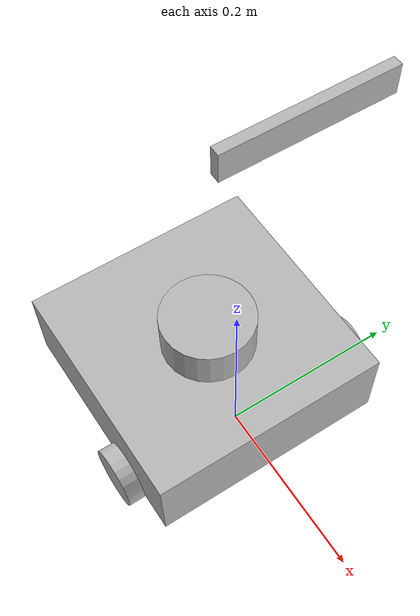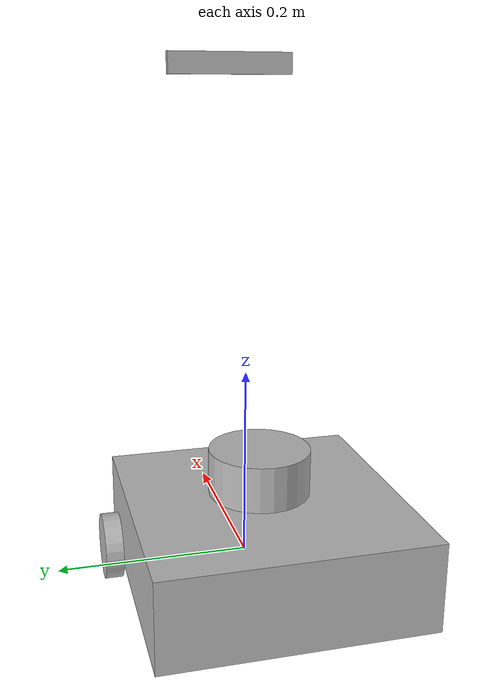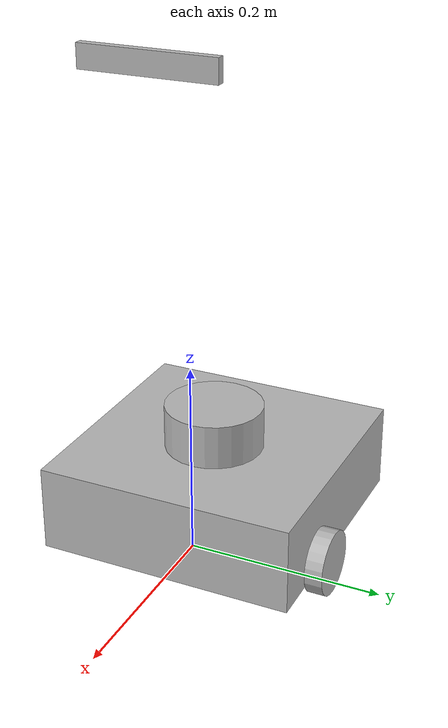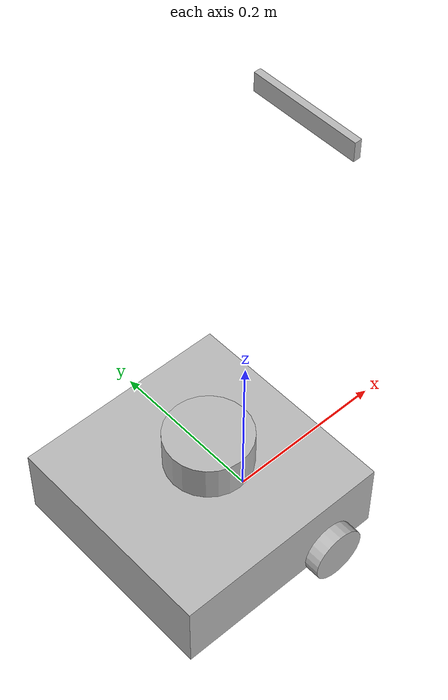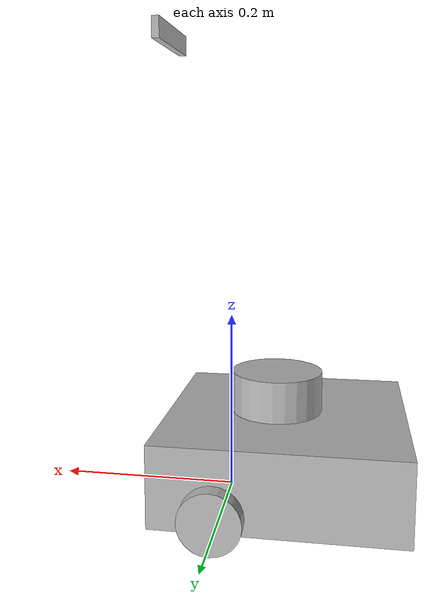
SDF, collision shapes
<?xml version="1.0"?>
<sdf version="1.6">
  <model name="turtlebot3_waffle_d435">
    <pose>0.0 0.0 0.0 0.0 0.0 0.0</pose>

    <link name="base_footprint" />

    <link name="base_link">

      <inertial>
        <pose>-0.064 0 0.048 0 0 0</pose>
        <inertia>
          <ixx>4.2111447e-02</ixx>
          <ixy>0</ixy>
          <ixz>0</ixz>
          <iyy>4.2111447e-02</iyy>
          <iyz>0</iyz>
          <izz>7.5254874e-02</izz>
        </inertia>
        <mass>1.3729096e+00</mass>
      </inertial>

      <collision name="base_collision">
        <pose>-0.064 0 0.048 0 0 0</pose>
        <geometry>
          <box>
            <size>0.265 0.265 0.089</size>
          </box>
        </geometry>
      </collision>

      <visual name="base_visual">
        <pose>-0.064 0 0 0 0 0</pose>
        <geometry>
          <mesh>
            <uri>/home/james/ros2_ws/src/my_nav2_bringup/my_bringup/models/turtlebot3_waffle_d435/meshes/waffle_base.dae</uri>
            <scale>0.001 0.001 0.001</scale>
          </mesh>
        </geometry>
      </visual>
    </link>

    <link name="imu_link">
      <sensor name="tb3_imu" type="imu">
        <always_on>true</always_on>
        <update_rate>200</update_rate>
        <imu>
          <angular_velocity>
            <x>
              <noise type="gaussian">
                <mean>0.0</mean>
                <stddev>2e-4</stddev>
              </noise>
            </x>
            <y>
              <noise type="gaussian">
                <mean>0.0</mean>
                <stddev>2e-4</stddev>
              </noise>
            </y>
            <z>
              <noise type="gaussian">
                <mean>0.0</mean>
                <stddev>2e-4</stddev>
              </noise>
            </z>
          </angular_velocity>
          <linear_acceleration>
            <x>
              <noise type="gaussian">
                <mean>0.0</mean>
                <stddev>1.7e-2</stddev>
              </noise>
            </x>
            <y>
              <noise type="gaussian">
                <mean>0.0</mean>
                <stddev>1.7e-2</stddev>
              </noise>
            </y>
            <z>
              <noise type="gaussian">
                <mean>0.0</mean>
                <stddev>1.7e-2</stddev>
              </noise>
            </z>
          </linear_acceleration>
        </imu>
        <plugin name="turtlebot3_imu" filename="libgazebo_ros_imu_sensor.so">
          <ros>
            <remapping>~/out:=imu</remapping>
          </ros>
        </plugin>
      </sensor>
    </link>

    <link name="base_scan">
      <inertial>
        <pose>-0.052 0 0.111 0 0 0</pose>
        <inertia>
          <ixx>0.001</ixx>
          <ixy>0.000</ixy>
          <ixz>0.000</ixz>
          <iyy>0.001</iyy>
          <iyz>0.000</iyz>
          <izz>0.001</izz>
        </inertia>
        <mass>0.125</mass>
      </inertial>

      <collision name="lidar_sensor_collision">
        <pose>-0.052 0 0.111 0 0 0</pose>
        <geometry>
          <cylinder>
            <radius>0.0508</radius>
            <length>0.055</length>
          </cylinder>
        </geometry>
      </collision>

      <visual name="lidar_sensor_visual">
        <pose>-0.064 0 0.121 0 0 0</pose>
        <geometry>
          <mesh>
            <uri>/home/james/ros2_ws/src/my_nav2_bringup/my_bringup/models/turtlebot3_waffle_d435/meshes/lds.dae</uri>
            <scale>0.001 0.001 0.001</scale>
          </mesh>
        </geometry>
      </visual>

      <sensor name="hls_lfcd_lds" type="ray">
        <always_on>true</always_on>
        <visualize>true</visualize>
        <pose>-0.064 0 0.121 0 0 0</pose>
        <update_rate>5</update_rate>
        <ray>
          <scan>
            <horizontal>
              <samples>360</samples>
              <resolution>1.000000</resolution>
              <min_angle>0.000000</min_angle>
              <max_angle>6.280000</max_angle>
            </horizontal>
          </scan>
          <range>
            <min>0.120000</min>
            <max>3.5</max>
            <resolution>0.015000</resolution>
          </range>
          <noise>
            <type>gaussian</type>
            <mean>0.0</mean>
            <stddev>0.01</stddev>
          </noise>
        </ray>
        <plugin name="turtlebot3_laserscan" filename="libgazebo_ros_ray_sensor.so">
          <ros>
            <remapping>~/out:=scan</remapping>
          </ros>
          <output_type>sensor_msgs/LaserScan</output_type>
          <frame_name>base_scan</frame_name>
        </plugin>
      </sensor>
    </link>

    <link name="wheel_left_link">

      <inertial>
        <pose>0.0 0.144 0.023 -1.57 0 0</pose>
        <inertia>
          <ixx>1.1175580e-05</ixx>
          <ixy>-4.2369783e-11</ixy>
          <ixz>-5.9381719e-09</ixz>
          <iyy>1.1192413e-05</iyy>
          <iyz>-1.4400107e-11</iyz>
          <izz>2.0712558e-05</izz>
        </inertia>
        <mass>0.1</mass>
      </inertial>

      <collision name="wheel_left_collision">
        <pose>0.0 0.144 0.023 -1.57 0 0</pose>
        <geometry>
          <cylinder>
            <radius>0.033</radius>
            <length>0.018</length>
          </cylinder>
        </geometry>
        <surface>
          <!-- This friction pamareter don't contain reliable data!! -->
          <friction>
            <ode>
              <mu>100000.0</mu>
              <mu2>100000.0</mu2>
              <fdir1>0 0 0</fdir1>
              <slip1>0.0</slip1>
              <slip2>0.0</slip2>
            </ode>
          </friction>
          <contact>
            <ode>
              <soft_cfm>0</soft_cfm>
              <soft_erp>0.2</soft_erp>
              <kp>1e+5</kp>
              <kd>1</kd>
              <max_vel>0.01</max_vel>
              <min_depth>0.001</min_depth>
            </ode>
          </contact>
        </surface>
      </collision>

      <visual name="wheel_left_visual">
        <pose>0.0 0.144 0.023 0 0 0</pose>
        <geometry>
          <mesh>
            <uri>/home/james/ros2_ws/src/my_nav2_bringup/my_bringup/models/turtlebot3_waffle_d435/meshes/tire.dae</uri>
            <scale>0.001 0.001 0.001</scale>
          </mesh>
        </geometry>
      </visual>
    </link>

    <link name="wheel_right_link">

      <inertial>
        <pose>0.0 -0.144 0.023 -1.57 0 0</pose>
        <inertia>
          <ixx>1.1175580e-05</ixx>
          <ixy>-4.2369783e-11</ixy>
          <ixz>-5.9381719e-09</ixz>
          <iyy>1.1192413e-05</iyy>
          <iyz>-1.4400107e-11</iyz>
          <izz>2.0712558e-05</izz>
        </inertia>
        <mass>0.1</mass>
      </inertial>

      <collision name="wheel_right_collision">
        <pose>0.0 -0.144 0.023 -1.57 0 0</pose>
        <geometry>
          <cylinder>
            <radius>0.033</radius>
            <length>0.018</length>
          </cylinder>
        </geometry>
        <surface>
          <!-- This friction pamareter don't contain reliable data!! -->
          <friction>
            <ode>
              <mu>100000.0</mu>
              <mu2>100000.0</mu2>
              <fdir1>0 0 0</fdir1>
              <slip1>0.0</slip1>
              <slip2>0.0</slip2>
            </ode>
          </friction>
          <contact>
            <ode>
              <soft_cfm>0</soft_cfm>
              <soft_erp>0.2</soft_erp>
              <kp>1e+5</kp>
              <kd>1</kd>
              <max_vel>0.01</max_vel>
              <min_depth>0.001</min_depth>
            </ode>
          </contact>
        </surface>
      </collision>

      <visual name="wheel_right_visual">
        <pose>0.0 -0.144 0.023 0 0 0</pose>
        <geometry>
          <mesh>
            <uri>/home/james/ros2_ws/src/my_nav2_bringup/my_bringup/models/turtlebot3_waffle_d435/meshes/tire.dae</uri>
            <scale>0.001 0.001 0.001</scale>
          </mesh>
        </geometry>
      </visual>
    </link>

    <link name='caster_back_right_link'>
      <pose>-0.177 -0.064 -0.004 -1.57 0 0</pose>
      <inertial>
        <mass>0.001</mass>
        <inertia>
          <ixx>0.00001</ixx>
          <ixy>0.000</ixy>
          <ixz>0.000</ixz>
          <iyy>0.00001</iyy>
          <iyz>0.000</iyz>
          <izz>0.00001</izz>
        </inertia>
      </inertial>
      <collision name='collision'>
        <geometry>
          <sphere>
            <radius>0.005000</radius>
          </sphere>
        </geometry>
        <surface>
          <contact>
            <ode>
              <soft_cfm>0</soft_cfm>
              <soft_erp>0.2</soft_erp>
              <kp>1e+5</kp>
              <kd>1</kd>
              <max_vel>0.01</max_vel>
              <min_depth>0.001</min_depth>
            </ode>
          </contact>
        </surface>
      </collision>
    </link>

    <link name='caster_back_left_link'>
      <pose>-0.177 0.064 -0.004 -1.57 0 0</pose>
      <inertial>
        <mass>0.001</mass>
        <inertia>
          <ixx>0.00001</ixx>
          <ixy>0.000</ixy>
          <ixz>0.000</ixz>
          <iyy>0.00001</iyy>
          <iyz>0.000</iyz>
          <izz>0.00001</izz>
        </inertia>
      </inertial>
      <collision name='collision'>
        <geometry>
          <sphere>
            <radius>0.005000</radius>
          </sphere>
        </geometry>
        <surface>
          <contact>
            <ode>
              <soft_cfm>0</soft_cfm>
              <soft_erp>0.2</soft_erp>
              <kp>1e+5</kp>
              <kd>1</kd>
              <max_vel>0.01</max_vel>
              <min_depth>0.001</min_depth>
            </ode>
          </contact>
        </surface>
      </collision>
    </link>

    <link name="camera_link">
      <inertial>
        <inertia>
          <ixx>0.001</ixx>
          <ixy>0.000</ixy>
          <ixz>0.000</ixz>
          <iyy>0.001</iyy>
          <iyz>0.000</iyz>
          <izz>0.001</izz>
        </inertia>
        <mass>0.035</mass>
      </inertial>

      <collision name="collision">
        <geometry>
          <box>
            <size>0.008 0.130 0.022</size>
          </box>
        </geometry>
      </collision>

      <visual name="camera_visual">
        <!-- visual裡面的pose是改可視化的物體位置 -->
        <pose>-0.01 -0.06 -0.415 1.57 0 1.57</pose>
        <geometry>
          <mesh>
            <uri>/home/james/ros2_ws/src/my_nav2_bringup/my_bringup/models/turtlebot3_waffle_d435/meshes/r200.dae</uri>
          </mesh>
        </geometry>
      </visual>

      <!-- 修改此pose可調整鏡頭高度 -->
      <pose>0.069 -0.0 0.507 0 0 0</pose>

      <sensor name="intel_realsense_r200_depth" type="depth">
        <always_on>1</always_on>
        <update_rate>30</update_rate>
        <visualize>1</visualize>
        <camera name="realsense_depth_camera">
          <horizontal_fov>1.02974</horizontal_fov>
          <image>
            <width>640</width>
            <height>480</height>
            <format>R8G8B8</format>
          </image>
          <clip>
            <near>0.02</near>
            <far>300</far>
          </clip>
          <noise>
            <type>gaussian</type>
            <mean>0.0</mean>
            <stddev>0.007</stddev>
          </noise>
        </camera>
        <plugin name="intel_realsense_r200_depth_driver" filename="libgazebo_ros_camera.so">
          <ros>
          </ros>
          <camera_name>intel_realsense_r200_depth</camera_name>
          <frame_name>camera_depth_frame</frame_name>
          <hack_baseline>0.07</hack_baseline>
          <min_depth>0.001</min_depth>
          <max_depth>5.0</max_depth>
        </plugin>
      </sensor>
      <!-- Virtual RGB camera sensor -->
      <sensor name="rgb_camera" type="camera">
        <pose>0.0 0.0 0.0 0 0 0</pose>
        <camera name="rgb_camera">
          <horizontal_fov>1.047</horizontal_fov>
          <image>
            <width>640</width>
            <height>480</height>
            <format>R8G8B8</format>
          </image>
          <clip>
            <near>0.1</near>
            <far>100</far>
          </clip>
          <noise>
            <type>gaussian</type>
            <mean>0.0</mean>
            <stddev>0.007</stddev>
          </noise>
        </camera>
        <always_on>1</always_on>
        <update_rate>60</update_rate>
        <visualize>1</visualize>
        <plugin name="rgb_camera_driver" filename="libgazebo_ros_camera.so">
          <ros>
          </ros>
          <camera_name>intel_realsense_r200_color_frame</camera_name>
          <frame_name>intel_realsense_r200_color_optical_frame</frame_name>
          <hack_baseline>0.07</hack_baseline>
        </plugin>
      </sensor>
    </link>

    <joint name="base_joint" type="fixed">
      <parent>base_footprint</parent>
      <child>base_link</child>
      <pose>0.0 0.0 0.010 0 0 0</pose>
    </joint>

    <joint name="wheel_left_joint" type="revolute">
      <parent>base_link</parent>
      <child>wheel_left_link</child>
      <pose>0.0 0.144 0.023 -1.57 0 0</pose>
      <axis>
        <xyz>0 0 1</xyz>
      </axis>
    </joint>

    <joint name="wheel_right_joint" type="revolute">
      <parent>base_link</parent>
      <child>wheel_right_link</child>
      <pose>0.0 -0.144 0.023 -1.57 0 0</pose>
      <axis>
        <xyz>0 0 1</xyz>
      </axis>
    </joint>

    <joint name='caster_back_right_joint' type='ball'>
      <parent>base_link</parent>
      <child>caster_back_right_link</child>
    </joint>

    <joint name='caster_back_left_joint' type='ball'>
      <parent>base_link</parent>
      <child>caster_back_left_link</child>
    </joint>

    <joint name="imu_joint" type="fixed">
      <parent>base_link</parent>
      <child>imu_link</child>
      <pose>-0.032 0 0.068 0 0 0</pose>
      <axis>
        <xyz>0 0 1</xyz>
      </axis>
    </joint>

    <joint name="lidar_joint" type="fixed">
      <parent>base_link</parent>
      <child>base_scan</child>
      <pose>-0.064 0 0.121 0 0 0</pose>
      <axis>
        <xyz>0 0 1</xyz>
      </axis>
    </joint>

    <joint name="camera_joint" type="fixed">
      <parent>base_link</parent>
      <child>camera_link</child>
    </joint>

    <plugin name="turtlebot3_diff_drive" filename="libgazebo_ros_diff_drive.so">

      <ros>
      </ros>

      <update_rate>30</update_rate>

      <!-- wheels -->
      <left_joint>wheel_left_joint</left_joint>
      <right_joint>wheel_right_joint</right_joint>

      <!-- kinematics -->
      <wheel_separation>0.287</wheel_separation>
      <wheel_diameter>0.066</wheel_diameter>

      <!-- limits -->
      <max_wheel_torque>20</max_wheel_torque>
      <max_wheel_acceleration>1.0</max_wheel_acceleration>

      <command_topic>cmd_vel</command_topic>

      <!-- output -->
      <publish_odom>true</publish_odom>
      <publish_odom_tf>true</publish_odom_tf>
      <publish_wheel_tf>false</publish_wheel_tf>

      <odometry_topic>odom</odometry_topic>
      <odometry_frame>odom</odometry_frame>
      <robot_base_frame>base_footprint</robot_base_frame>

    </plugin>

    <plugin name="turtlebot3_joint_state" filename="libgazebo_ros_joint_state_publisher.so">
      <ros>
        <remapping>~/out:=joint_states</remapping>
      </ros>
      <update_rate>30</update_rate>
      <joint_name>wheel_left_joint</joint_name>
      <joint_name>wheel_right_joint</joint_name>
    </plugin>

  </model>
</sdf>
